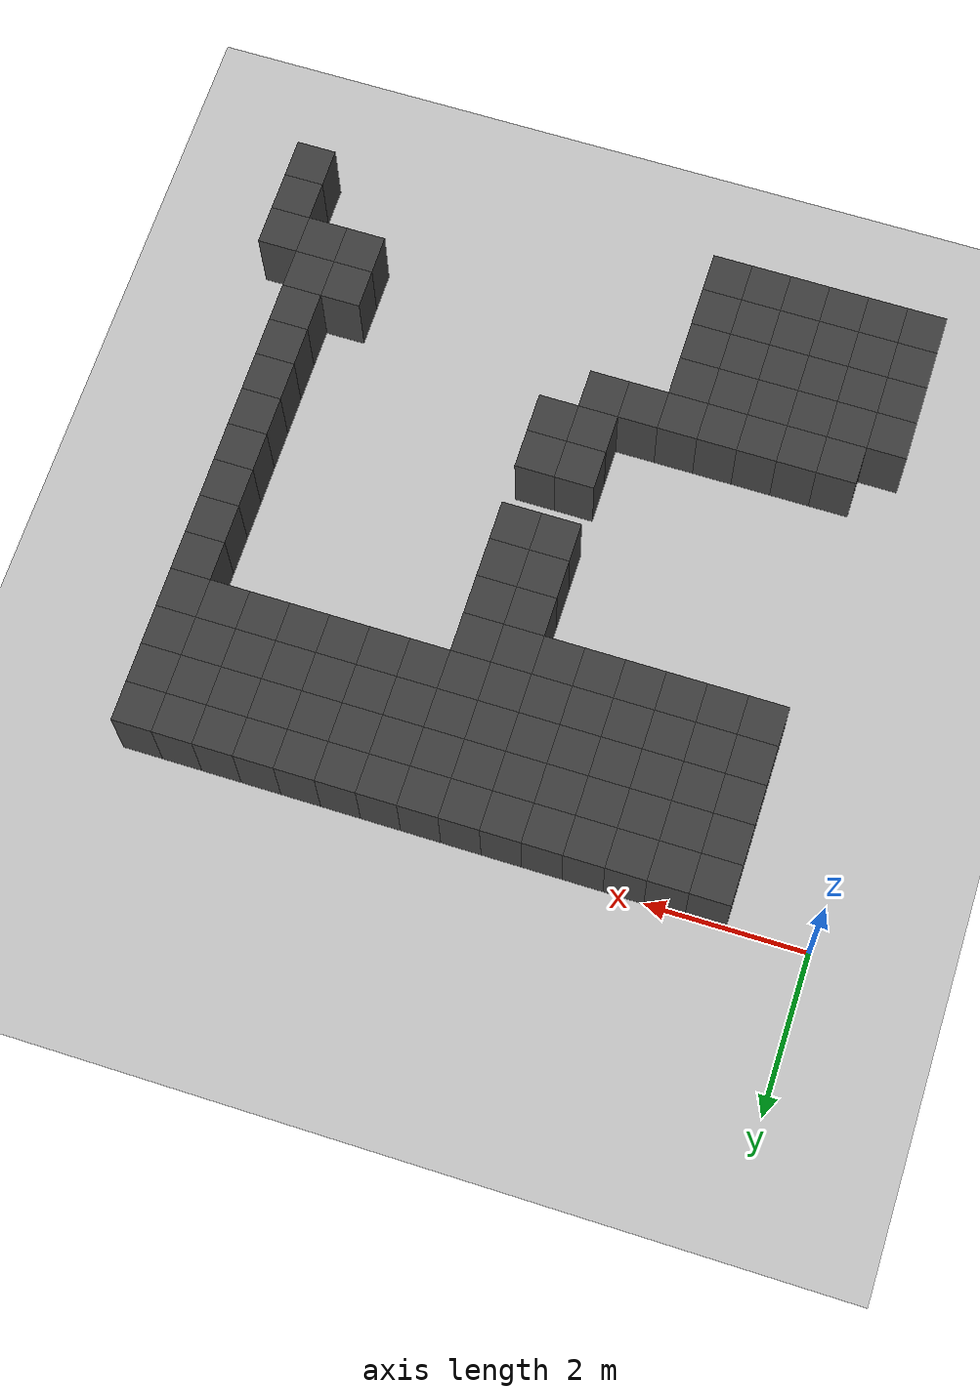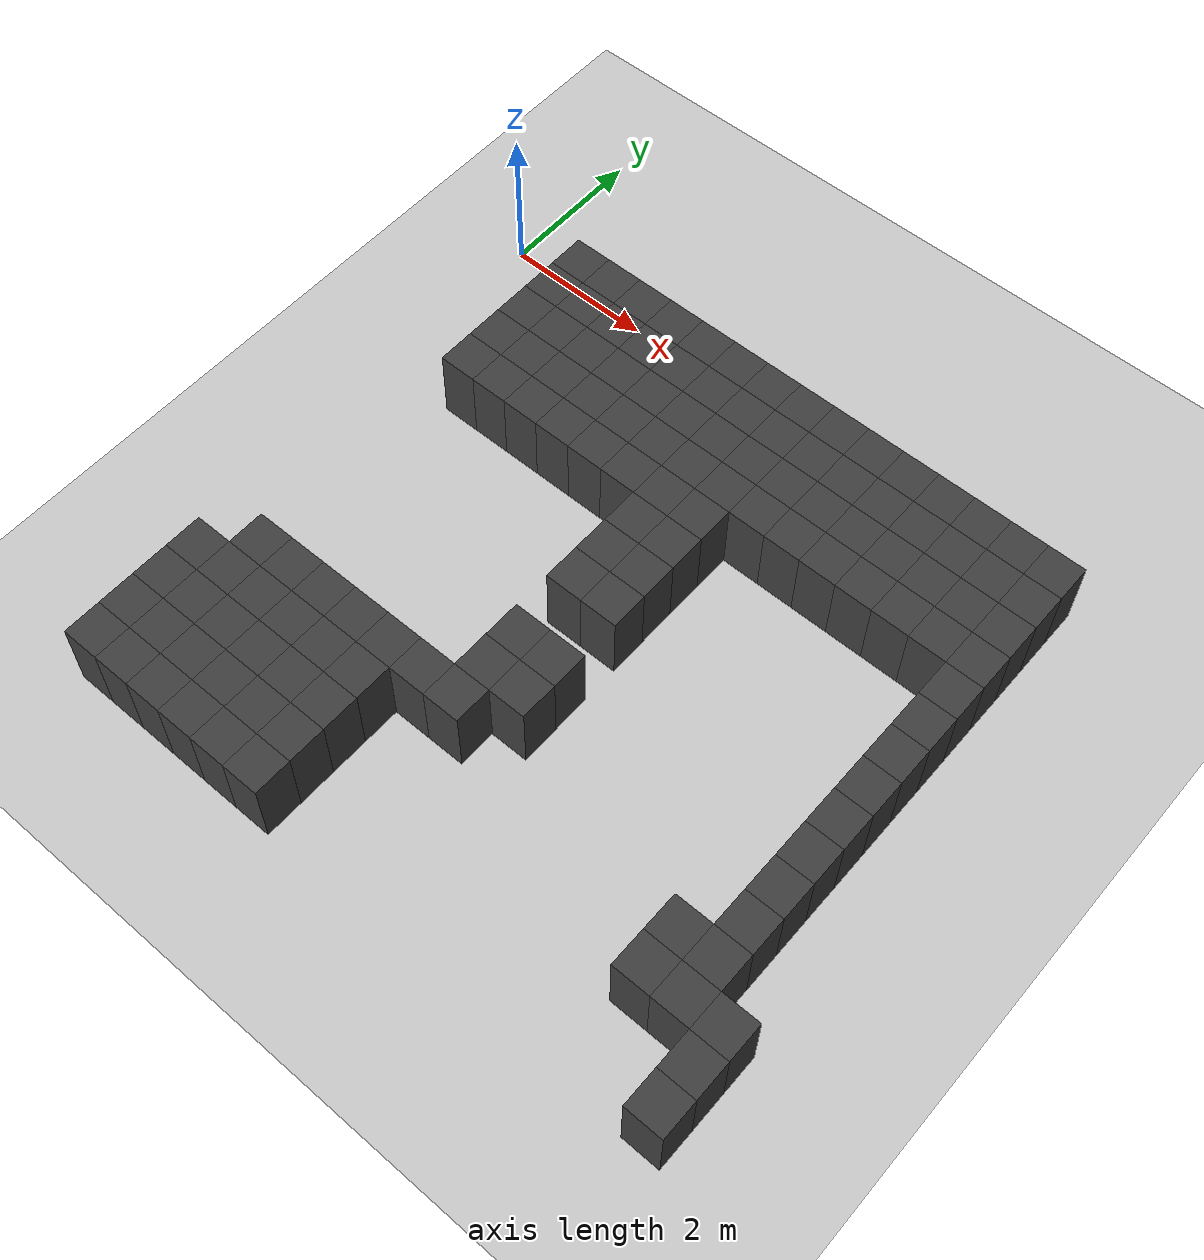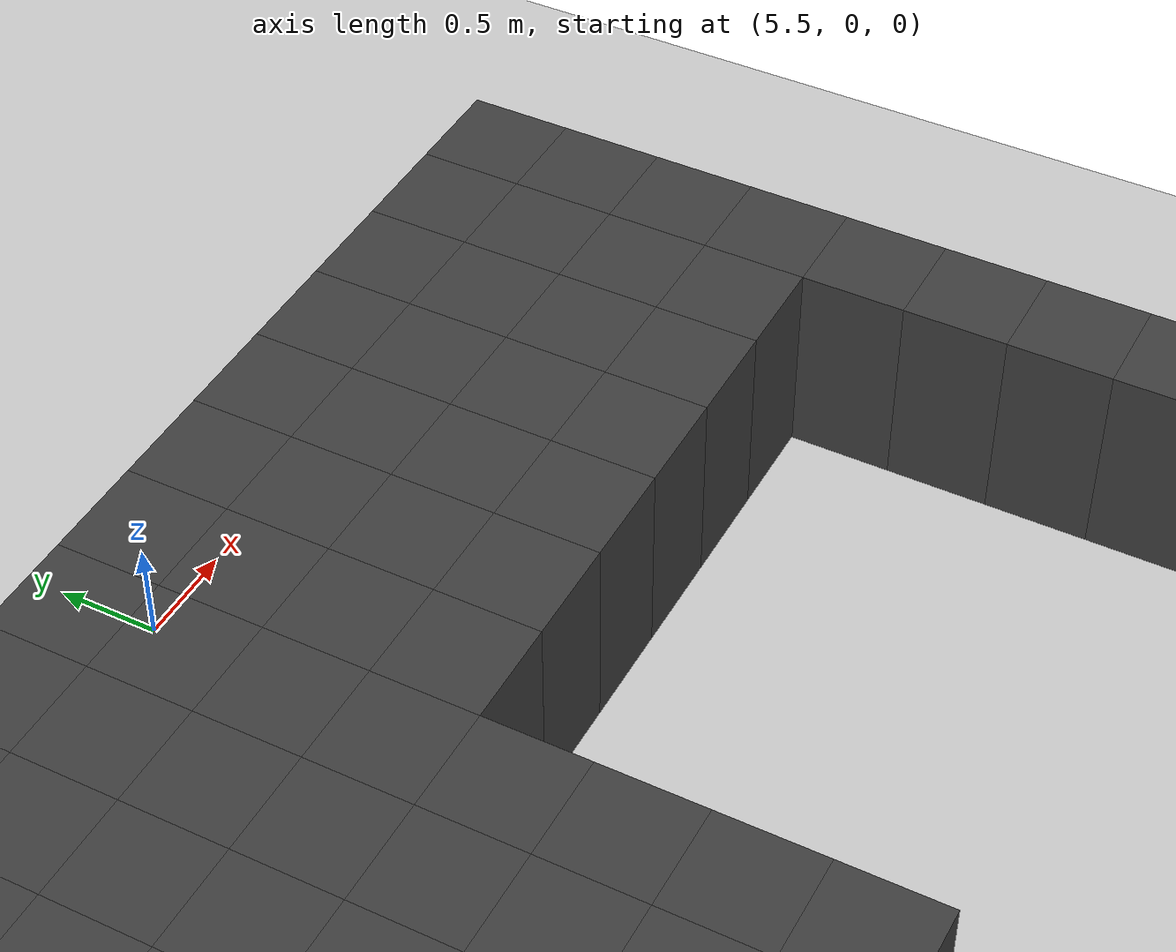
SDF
<sdf version="1.7">
 <world name="map_14668">
  <model name="ground_plane">
   <static>true</static>
   <link name="link">
    <collision name="collision">
     <geometry><plane><normal>0 0 1</normal><size>200 200</size></plane></geometry>
    </collision>
    <visual name="visual">
     <geometry><plane><normal>0 0 1</normal><size>200 200</size></plane></geometry>
     <material><ambient>0.8 0.8 0.8 1</ambient><diffuse>0.8 0.8 0.8 1</diffuse></material>
    </visual>
   </link>
  </model>
  <model name="maze_environment">
   <static>true</static>
   <link name="wall_977">
    <pose>1.250 -0.250 0.500 0 0 0</pose>
    <collision name="col"><geometry><box><size>0.5 0.5 1.0</size></box></geometry></collision>
    <visual name="vis">
     <geometry><box><size>0.5 0.5 1.0</size></box></geometry>
     <material><ambient>0.15 0.15 0.15 1</ambient><diffuse>0.25 0.25 0.25 1</diffuse></material>
    </visual>
   </link>
   <link name="wall_978">
    <pose>1.750 -0.250 0.500 0 0 0</pose>
    <collision name="col"><geometry><box><size>0.5 0.5 1.0</size></box></geometry></collision>
    <visual name="vis">
     <geometry><box><size>0.5 0.5 1.0</size></box></geometry>
     <material><ambient>0.15 0.15 0.15 1</ambient><diffuse>0.25 0.25 0.25 1</diffuse></material>
    </visual>
   </link>
   <link name="wall_979">
    <pose>2.250 -0.250 0.500 0 0 0</pose>
    <collision name="col"><geometry><box><size>0.5 0.5 1.0</size></box></geometry></collision>
    <visual name="vis">
     <geometry><box><size>0.5 0.5 1.0</size></box></geometry>
     <material><ambient>0.15 0.15 0.15 1</ambient><diffuse>0.25 0.25 0.25 1</diffuse></material>
    </visual>
   </link>
   <link name="wall_980">
    <pose>2.750 -0.250 0.500 0 0 0</pose>
    <collision name="col"><geometry><box><size>0.5 0.5 1.0</size></box></geometry></collision>
    <visual name="vis">
     <geometry><box><size>0.5 0.5 1.0</size></box></geometry>
     <material><ambient>0.15 0.15 0.15 1</ambient><diffuse>0.25 0.25 0.25 1</diffuse></material>
    </visual>
   </link>
   <link name="wall_981">
    <pose>3.250 -0.250 0.500 0 0 0</pose>
    <collision name="col"><geometry><box><size>0.5 0.5 1.0</size></box></geometry></collision>
    <visual name="vis">
     <geometry><box><size>0.5 0.5 1.0</size></box></geometry>
     <material><ambient>0.15 0.15 0.15 1</ambient><diffuse>0.25 0.25 0.25 1</diffuse></material>
    </visual>
   </link>
   <link name="wall_982">
    <pose>3.750 -0.250 0.500 0 0 0</pose>
    <collision name="col"><geometry><box><size>0.5 0.5 1.0</size></box></geometry></collision>
    <visual name="vis">
     <geometry><box><size>0.5 0.5 1.0</size></box></geometry>
     <material><ambient>0.15 0.15 0.15 1</ambient><diffuse>0.25 0.25 0.25 1</diffuse></material>
    </visual>
   </link>
   <link name="wall_983">
    <pose>4.250 -0.250 0.500 0 0 0</pose>
    <collision name="col"><geometry><box><size>0.5 0.5 1.0</size></box></geometry></collision>
    <visual name="vis">
     <geometry><box><size>0.5 0.5 1.0</size></box></geometry>
     <material><ambient>0.15 0.15 0.15 1</ambient><diffuse>0.25 0.25 0.25 1</diffuse></material>
    </visual>
   </link>
   <link name="wall_984">
    <pose>4.750 -0.250 0.500 0 0 0</pose>
    <collision name="col"><geometry><box><size>0.5 0.5 1.0</size></box></geometry></collision>
    <visual name="vis">
     <geometry><box><size>0.5 0.5 1.0</size></box></geometry>
     <material><ambient>0.15 0.15 0.15 1</ambient><diffuse>0.25 0.25 0.25 1</diffuse></material>
    </visual>
   </link>
   <link name="wall_985">
    <pose>5.250 -0.250 0.500 0 0 0</pose>
    <collision name="col"><geometry><box><size>0.5 0.5 1.0</size></box></geometry></collision>
    <visual name="vis">
     <geometry><box><size>0.5 0.5 1.0</size></box></geometry>
     <material><ambient>0.15 0.15 0.15 1</ambient><diffuse>0.25 0.25 0.25 1</diffuse></material>
    </visual>
   </link>
   <link name="wall_986">
    <pose>5.750 -0.250 0.500 0 0 0</pose>
    <collision name="col"><geometry><box><size>0.5 0.5 1.0</size></box></geometry></collision>
    <visual name="vis">
     <geometry><box><size>0.5 0.5 1.0</size></box></geometry>
     <material><ambient>0.15 0.15 0.15 1</ambient><diffuse>0.25 0.25 0.25 1</diffuse></material>
    </visual>
   </link>
   <link name="wall_987">
    <pose>6.250 -0.250 0.500 0 0 0</pose>
    <collision name="col"><geometry><box><size>0.5 0.5 1.0</size></box></geometry></collision>
    <visual name="vis">
     <geometry><box><size>0.5 0.5 1.0</size></box></geometry>
     <material><ambient>0.15 0.15 0.15 1</ambient><diffuse>0.25 0.25 0.25 1</diffuse></material>
    </visual>
   </link>
   <link name="wall_988">
    <pose>6.750 -0.250 0.500 0 0 0</pose>
    <collision name="col"><geometry><box><size>0.5 0.5 1.0</size></box></geometry></collision>
    <visual name="vis">
     <geometry><box><size>0.5 0.5 1.0</size></box></geometry>
     <material><ambient>0.15 0.15 0.15 1</ambient><diffuse>0.25 0.25 0.25 1</diffuse></material>
    </visual>
   </link>
   <link name="wall_989">
    <pose>7.250 -0.250 0.500 0 0 0</pose>
    <collision name="col"><geometry><box><size>0.5 0.5 1.0</size></box></geometry></collision>
    <visual name="vis">
     <geometry><box><size>0.5 0.5 1.0</size></box></geometry>
     <material><ambient>0.15 0.15 0.15 1</ambient><diffuse>0.25 0.25 0.25 1</diffuse></material>
    </visual>
   </link>
   <link name="wall_990">
    <pose>7.750 -0.250 0.500 0 0 0</pose>
    <collision name="col"><geometry><box><size>0.5 0.5 1.0</size></box></geometry></collision>
    <visual name="vis">
     <geometry><box><size>0.5 0.5 1.0</size></box></geometry>
     <material><ambient>0.15 0.15 0.15 1</ambient><diffuse>0.25 0.25 0.25 1</diffuse></material>
    </visual>
   </link>
   <link name="wall_991">
    <pose>8.250 -0.250 0.500 0 0 0</pose>
    <collision name="col"><geometry><box><size>0.5 0.5 1.0</size></box></geometry></collision>
    <visual name="vis">
     <geometry><box><size>0.5 0.5 1.0</size></box></geometry>
     <material><ambient>0.15 0.15 0.15 1</ambient><diffuse>0.25 0.25 0.25 1</diffuse></material>
    </visual>
   </link>
   <link name="wall_1026">
    <pose>1.250 -0.750 0.500 0 0 0</pose>
    <collision name="col"><geometry><box><size>0.5 0.5 1.0</size></box></geometry></collision>
    <visual name="vis">
     <geometry><box><size>0.5 0.5 1.0</size></box></geometry>
     <material><ambient>0.15 0.15 0.15 1</ambient><diffuse>0.25 0.25 0.25 1</diffuse></material>
    </visual>
   </link>
   <link name="wall_1027">
    <pose>1.750 -0.750 0.500 0 0 0</pose>
    <collision name="col"><geometry><box><size>0.5 0.5 1.0</size></box></geometry></collision>
    <visual name="vis">
     <geometry><box><size>0.5 0.5 1.0</size></box></geometry>
     <material><ambient>0.15 0.15 0.15 1</ambient><diffuse>0.25 0.25 0.25 1</diffuse></material>
    </visual>
   </link>
   <link name="wall_1028">
    <pose>2.250 -0.750 0.500 0 0 0</pose>
    <collision name="col"><geometry><box><size>0.5 0.5 1.0</size></box></geometry></collision>
    <visual name="vis">
     <geometry><box><size>0.5 0.5 1.0</size></box></geometry>
     <material><ambient>0.15 0.15 0.15 1</ambient><diffuse>0.25 0.25 0.25 1</diffuse></material>
    </visual>
   </link>
   <link name="wall_1029">
    <pose>2.750 -0.750 0.500 0 0 0</pose>
    <collision name="col"><geometry><box><size>0.5 0.5 1.0</size></box></geometry></collision>
    <visual name="vis">
     <geometry><box><size>0.5 0.5 1.0</size></box></geometry>
     <material><ambient>0.15 0.15 0.15 1</ambient><diffuse>0.25 0.25 0.25 1</diffuse></material>
    </visual>
   </link>
   <link name="wall_1030">
    <pose>3.250 -0.750 0.500 0 0 0</pose>
    <collision name="col"><geometry><box><size>0.5 0.5 1.0</size></box></geometry></collision>
    <visual name="vis">
     <geometry><box><size>0.5 0.5 1.0</size></box></geometry>
     <material><ambient>0.15 0.15 0.15 1</ambient><diffuse>0.25 0.25 0.25 1</diffuse></material>
    </visual>
   </link>
   <link name="wall_1031">
    <pose>3.750 -0.750 0.500 0 0 0</pose>
    <collision name="col"><geometry><box><size>0.5 0.5 1.0</size></box></geometry></collision>
    <visual name="vis">
     <geometry><box><size>0.5 0.5 1.0</size></box></geometry>
     <material><ambient>0.15 0.15 0.15 1</ambient><diffuse>0.25 0.25 0.25 1</diffuse></material>
    </visual>
   </link>
   <link name="wall_1032">
    <pose>4.250 -0.750 0.500 0 0 0</pose>
    <collision name="col"><geometry><box><size>0.5 0.5 1.0</size></box></geometry></collision>
    <visual name="vis">
     <geometry><box><size>0.5 0.5 1.0</size></box></geometry>
     <material><ambient>0.15 0.15 0.15 1</ambient><diffuse>0.25 0.25 0.25 1</diffuse></material>
    </visual>
   </link>
   <link name="wall_1033">
    <pose>4.750 -0.750 0.500 0 0 0</pose>
    <collision name="col"><geometry><box><size>0.5 0.5 1.0</size></box></geometry></collision>
    <visual name="vis">
     <geometry><box><size>0.5 0.5 1.0</size></box></geometry>
     <material><ambient>0.15 0.15 0.15 1</ambient><diffuse>0.25 0.25 0.25 1</diffuse></material>
    </visual>
   </link>
   <link name="wall_1034">
    <pose>5.250 -0.750 0.500 0 0 0</pose>
    <collision name="col"><geometry><box><size>0.5 0.5 1.0</size></box></geometry></collision>
    <visual name="vis">
     <geometry><box><size>0.5 0.5 1.0</size></box></geometry>
     <material><ambient>0.15 0.15 0.15 1</ambient><diffuse>0.25 0.25 0.25 1</diffuse></material>
    </visual>
   </link>
   <link name="wall_1035">
    <pose>5.750 -0.750 0.500 0 0 0</pose>
    <collision name="col"><geometry><box><size>0.5 0.5 1.0</size></box></geometry></collision>
    <visual name="vis">
     <geometry><box><size>0.5 0.5 1.0</size></box></geometry>
     <material><ambient>0.15 0.15 0.15 1</ambient><diffuse>0.25 0.25 0.25 1</diffuse></material>
    </visual>
   </link>
   <link name="wall_1036">
    <pose>6.250 -0.750 0.500 0 0 0</pose>
    <collision name="col"><geometry><box><size>0.5 0.5 1.0</size></box></geometry></collision>
    <visual name="vis">
     <geometry><box><size>0.5 0.5 1.0</size></box></geometry>
     <material><ambient>0.15 0.15 0.15 1</ambient><diffuse>0.25 0.25 0.25 1</diffuse></material>
    </visual>
   </link>
   <link name="wall_1037">
    <pose>6.750 -0.750 0.500 0 0 0</pose>
    <collision name="col"><geometry><box><size>0.5 0.5 1.0</size></box></geometry></collision>
    <visual name="vis">
     <geometry><box><size>0.5 0.5 1.0</size></box></geometry>
     <material><ambient>0.15 0.15 0.15 1</ambient><diffuse>0.25 0.25 0.25 1</diffuse></material>
    </visual>
   </link>
   <link name="wall_1038">
    <pose>7.250 -0.750 0.500 0 0 0</pose>
    <collision name="col"><geometry><box><size>0.5 0.5 1.0</size></box></geometry></collision>
    <visual name="vis">
     <geometry><box><size>0.5 0.5 1.0</size></box></geometry>
     <material><ambient>0.15 0.15 0.15 1</ambient><diffuse>0.25 0.25 0.25 1</diffuse></material>
    </visual>
   </link>
   <link name="wall_1039">
    <pose>7.750 -0.750 0.500 0 0 0</pose>
    <collision name="col"><geometry><box><size>0.5 0.5 1.0</size></box></geometry></collision>
    <visual name="vis">
     <geometry><box><size>0.5 0.5 1.0</size></box></geometry>
     <material><ambient>0.15 0.15 0.15 1</ambient><diffuse>0.25 0.25 0.25 1</diffuse></material>
    </visual>
   </link>
   <link name="wall_1040">
    <pose>8.250 -0.750 0.500 0 0 0</pose>
    <collision name="col"><geometry><box><size>0.5 0.5 1.0</size></box></geometry></collision>
    <visual name="vis">
     <geometry><box><size>0.5 0.5 1.0</size></box></geometry>
     <material><ambient>0.15 0.15 0.15 1</ambient><diffuse>0.25 0.25 0.25 1</diffuse></material>
    </visual>
   </link>
   <link name="wall_1068">
    <pose>1.250 -1.250 0.500 0 0 0</pose>
    <collision name="col"><geometry><box><size>0.5 0.5 1.0</size></box></geometry></collision>
    <visual name="vis">
     <geometry><box><size>0.5 0.5 1.0</size></box></geometry>
     <material><ambient>0.15 0.15 0.15 1</ambient><diffuse>0.25 0.25 0.25 1</diffuse></material>
    </visual>
   </link>
   <link name="wall_1069">
    <pose>1.750 -1.250 0.500 0 0 0</pose>
    <collision name="col"><geometry><box><size>0.5 0.5 1.0</size></box></geometry></collision>
    <visual name="vis">
     <geometry><box><size>0.5 0.5 1.0</size></box></geometry>
     <material><ambient>0.15 0.15 0.15 1</ambient><diffuse>0.25 0.25 0.25 1</diffuse></material>
    </visual>
   </link>
   <link name="wall_1070">
    <pose>2.250 -1.250 0.500 0 0 0</pose>
    <collision name="col"><geometry><box><size>0.5 0.5 1.0</size></box></geometry></collision>
    <visual name="vis">
     <geometry><box><size>0.5 0.5 1.0</size></box></geometry>
     <material><ambient>0.15 0.15 0.15 1</ambient><diffuse>0.25 0.25 0.25 1</diffuse></material>
    </visual>
   </link>
   <link name="wall_1071">
    <pose>2.750 -1.250 0.500 0 0 0</pose>
    <collision name="col"><geometry><box><size>0.5 0.5 1.0</size></box></geometry></collision>
    <visual name="vis">
     <geometry><box><size>0.5 0.5 1.0</size></box></geometry>
     <material><ambient>0.15 0.15 0.15 1</ambient><diffuse>0.25 0.25 0.25 1</diffuse></material>
    </visual>
   </link>
   <link name="wall_1072">
    <pose>3.250 -1.250 0.500 0 0 0</pose>
    <collision name="col"><geometry><box><size>0.5 0.5 1.0</size></box></geometry></collision>
    <visual name="vis">
     <geometry><box><size>0.5 0.5 1.0</size></box></geometry>
     <material><ambient>0.15 0.15 0.15 1</ambient><diffuse>0.25 0.25 0.25 1</diffuse></material>
    </visual>
   </link>
   <link name="wall_1073">
    <pose>3.750 -1.250 0.500 0 0 0</pose>
    <collision name="col"><geometry><box><size>0.5 0.5 1.0</size></box></geometry></collision>
    <visual name="vis">
     <geometry><box><size>0.5 0.5 1.0</size></box></geometry>
     <material><ambient>0.15 0.15 0.15 1</ambient><diffuse>0.25 0.25 0.25 1</diffuse></material>
    </visual>
   </link>
   <link name="wall_1074">
    <pose>4.250 -1.250 0.500 0 0 0</pose>
    <collision name="col"><geometry><box><size>0.5 0.5 1.0</size></box></geometry></collision>
    <visual name="vis">
     <geometry><box><size>0.5 0.5 1.0</size></box></geometry>
     <material><ambient>0.15 0.15 0.15 1</ambient><diffuse>0.25 0.25 0.25 1</diffuse></material>
    </visual>
   </link>
   <link name="wall_1075">
    <pose>4.750 -1.250 0.500 0 0 0</pose>
    <collision name="col"><geometry><box><size>0.5 0.5 1.0</size></box></geometry></collision>
    <visual name="vis">
     <geometry><box><size>0.5 0.5 1.0</size></box></geometry>
     <material><ambient>0.15 0.15 0.15 1</ambient><diffuse>0.25 0.25 0.25 1</diffuse></material>
    </visual>
   </link>
   <link name="wall_1076">
    <pose>5.250 -1.250 0.500 0 0 0</pose>
    <collision name="col"><geometry><box><size>0.5 0.5 1.0</size></box></geometry></collision>
    <visual name="vis">
     <geometry><box><size>0.5 0.5 1.0</size></box></geometry>
     <material><ambient>0.15 0.15 0.15 1</ambient><diffuse>0.25 0.25 0.25 1</diffuse></material>
    </visual>
   </link>
   <link name="wall_1077">
    <pose>5.750 -1.250 0.500 0 0 0</pose>
    <collision name="col"><geometry><box><size>0.5 0.5 1.0</size></box></geometry></collision>
    <visual name="vis">
     <geometry><box><size>0.5 0.5 1.0</size></box></geometry>
     <material><ambient>0.15 0.15 0.15 1</ambient><diffuse>0.25 0.25 0.25 1</diffuse></material>
    </visual>
   </link>
   <link name="wall_1078">
    <pose>6.250 -1.250 0.500 0 0 0</pose>
    <collision name="col"><geometry><box><size>0.5 0.5 1.0</size></box></geometry></collision>
    <visual name="vis">
     <geometry><box><size>0.5 0.5 1.0</size></box></geometry>
     <material><ambient>0.15 0.15 0.15 1</ambient><diffuse>0.25 0.25 0.25 1</diffuse></material>
    </visual>
   </link>
   <link name="wall_1079">
    <pose>6.750 -1.250 0.500 0 0 0</pose>
    <collision name="col"><geometry><box><size>0.5 0.5 1.0</size></box></geometry></collision>
    <visual name="vis">
     <geometry><box><size>0.5 0.5 1.0</size></box></geometry>
     <material><ambient>0.15 0.15 0.15 1</ambient><diffuse>0.25 0.25 0.25 1</diffuse></material>
    </visual>
   </link>
   <link name="wall_1080">
    <pose>7.250 -1.250 0.500 0 0 0</pose>
    <collision name="col"><geometry><box><size>0.5 0.5 1.0</size></box></geometry></collision>
    <visual name="vis">
     <geometry><box><size>0.5 0.5 1.0</size></box></geometry>
     <material><ambient>0.15 0.15 0.15 1</ambient><diffuse>0.25 0.25 0.25 1</diffuse></material>
    </visual>
   </link>
   <link name="wall_1081">
    <pose>7.750 -1.250 0.500 0 0 0</pose>
    <collision name="col"><geometry><box><size>0.5 0.5 1.0</size></box></geometry></collision>
    <visual name="vis">
     <geometry><box><size>0.5 0.5 1.0</size></box></geometry>
     <material><ambient>0.15 0.15 0.15 1</ambient><diffuse>0.25 0.25 0.25 1</diffuse></material>
    </visual>
   </link>
   <link name="wall_1082">
    <pose>8.250 -1.250 0.500 0 0 0</pose>
    <collision name="col"><geometry><box><size>0.5 0.5 1.0</size></box></geometry></collision>
    <visual name="vis">
     <geometry><box><size>0.5 0.5 1.0</size></box></geometry>
     <material><ambient>0.15 0.15 0.15 1</ambient><diffuse>0.25 0.25 0.25 1</diffuse></material>
    </visual>
   </link>
   <link name="wall_1104">
    <pose>1.250 -1.750 0.500 0 0 0</pose>
    <collision name="col"><geometry><box><size>0.5 0.5 1.0</size></box></geometry></collision>
    <visual name="vis">
     <geometry><box><size>0.5 0.5 1.0</size></box></geometry>
     <material><ambient>0.15 0.15 0.15 1</ambient><diffuse>0.25 0.25 0.25 1</diffuse></material>
    </visual>
   </link>
   <link name="wall_1105">
    <pose>1.750 -1.750 0.500 0 0 0</pose>
    <collision name="col"><geometry><box><size>0.5 0.5 1.0</size></box></geometry></collision>
    <visual name="vis">
     <geometry><box><size>0.5 0.5 1.0</size></box></geometry>
     <material><ambient>0.15 0.15 0.15 1</ambient><diffuse>0.25 0.25 0.25 1</diffuse></material>
    </visual>
   </link>
   <link name="wall_1106">
    <pose>2.250 -1.750 0.500 0 0 0</pose>
    <collision name="col"><geometry><box><size>0.5 0.5 1.0</size></box></geometry></collision>
    <visual name="vis">
     <geometry><box><size>0.5 0.5 1.0</size></box></geometry>
     <material><ambient>0.15 0.15 0.15 1</ambient><diffuse>0.25 0.25 0.25 1</diffuse></material>
    </visual>
   </link>
   <link name="wall_1107">
    <pose>2.750 -1.750 0.500 0 0 0</pose>
    <collision name="col"><geometry><box><size>0.5 0.5 1.0</size></box></geometry></collision>
    <visual name="vis">
     <geometry><box><size>0.5 0.5 1.0</size></box></geometry>
     <material><ambient>0.15 0.15 0.15 1</ambient><diffuse>0.25 0.25 0.25 1</diffuse></material>
    </visual>
   </link>
   <link name="wall_1108">
    <pose>3.250 -1.750 0.500 0 0 0</pose>
    <collision name="col"><geometry><box><size>0.5 0.5 1.0</size></box></geometry></collision>
    <visual name="vis">
     <geometry><box><size>0.5 0.5 1.0</size></box></geometry>
     <material><ambient>0.15 0.15 0.15 1</ambient><diffuse>0.25 0.25 0.25 1</diffuse></material>
    </visual>
   </link>
   <link name="wall_1109">
    <pose>3.750 -1.750 0.500 0 0 0</pose>
    <collision name="col"><geometry><box><size>0.5 0.5 1.0</size></box></geometry></collision>
    <visual name="vis">
     <geometry><box><size>0.5 0.5 1.0</size></box></geometry>
     <material><ambient>0.15 0.15 0.15 1</ambient><diffuse>0.25 0.25 0.25 1</diffuse></material>
    </visual>
   </link>
   <link name="wall_1110">
    <pose>4.250 -1.750 0.500 0 0 0</pose>
    <collision name="col"><geometry><box><size>0.5 0.5 1.0</size></box></geometry></collision>
    <visual name="vis">
     <geometry><box><size>0.5 0.5 1.0</size></box></geometry>
     <material><ambient>0.15 0.15 0.15 1</ambient><diffuse>0.25 0.25 0.25 1</diffuse></material>
    </visual>
   </link>
   <link name="wall_1111">
    <pose>4.750 -1.750 0.500 0 0 0</pose>
    <collision name="col"><geometry><box><size>0.5 0.5 1.0</size></box></geometry></collision>
    <visual name="vis">
     <geometry><box><size>0.5 0.5 1.0</size></box></geometry>
     <material><ambient>0.15 0.15 0.15 1</ambient><diffuse>0.25 0.25 0.25 1</diffuse></material>
    </visual>
   </link>
   <link name="wall_1112">
    <pose>5.250 -1.750 0.500 0 0 0</pose>
    <collision name="col"><geometry><box><size>0.5 0.5 1.0</size></box></geometry></collision>
    <visual name="vis">
     <geometry><box><size>0.5 0.5 1.0</size></box></geometry>
     <material><ambient>0.15 0.15 0.15 1</ambient><diffuse>0.25 0.25 0.25 1</diffuse></material>
    </visual>
   </link>
   <link name="wall_1113">
    <pose>5.750 -1.750 0.500 0 0 0</pose>
    <collision name="col"><geometry><box><size>0.5 0.5 1.0</size></box></geometry></collision>
    <visual name="vis">
     <geometry><box><size>0.5 0.5 1.0</size></box></geometry>
     <material><ambient>0.15 0.15 0.15 1</ambient><diffuse>0.25 0.25 0.25 1</diffuse></material>
    </visual>
   </link>
   <link name="wall_1114">
    <pose>6.250 -1.750 0.500 0 0 0</pose>
    <collision name="col"><geometry><box><size>0.5 0.5 1.0</size></box></geometry></collision>
    <visual name="vis">
     <geometry><box><size>0.5 0.5 1.0</size></box></geometry>
     <material><ambient>0.15 0.15 0.15 1</ambient><diffuse>0.25 0.25 0.25 1</diffuse></material>
    </visual>
   </link>
   <link name="wall_1115">
    <pose>6.750 -1.750 0.500 0 0 0</pose>
    <collision name="col"><geometry><box><size>0.5 0.5 1.0</size></box></geometry></collision>
    <visual name="vis">
     <geometry><box><size>0.5 0.5 1.0</size></box></geometry>
     <material><ambient>0.15 0.15 0.15 1</ambient><diffuse>0.25 0.25 0.25 1</diffuse></material>
    </visual>
   </link>
   <link name="wall_1116">
    <pose>7.250 -1.750 0.500 0 0 0</pose>
    <collision name="col"><geometry><box><size>0.5 0.5 1.0</size></box></geometry></collision>
    <visual name="vis">
     <geometry><box><size>0.5 0.5 1.0</size></box></geometry>
     <material><ambient>0.15 0.15 0.15 1</ambient><diffuse>0.25 0.25 0.25 1</diffuse></material>
    </visual>
   </link>
   <link name="wall_1117">
    <pose>7.750 -1.750 0.500 0 0 0</pose>
    <collision name="col"><geometry><box><size>0.5 0.5 1.0</size></box></geometry></collision>
    <visual name="vis">
     <geometry><box><size>0.5 0.5 1.0</size></box></geometry>
     <material><ambient>0.15 0.15 0.15 1</ambient><diffuse>0.25 0.25 0.25 1</diffuse></material>
    </visual>
   </link>
   <link name="wall_1118">
    <pose>8.250 -1.750 0.500 0 0 0</pose>
    <collision name="col"><geometry><box><size>0.5 0.5 1.0</size></box></geometry></collision>
    <visual name="vis">
     <geometry><box><size>0.5 0.5 1.0</size></box></geometry>
     <material><ambient>0.15 0.15 0.15 1</ambient><diffuse>0.25 0.25 0.25 1</diffuse></material>
    </visual>
   </link>
   <link name="wall_1140">
    <pose>1.250 -2.250 0.500 0 0 0</pose>
    <collision name="col"><geometry><box><size>0.5 0.5 1.0</size></box></geometry></collision>
    <visual name="vis">
     <geometry><box><size>0.5 0.5 1.0</size></box></geometry>
     <material><ambient>0.15 0.15 0.15 1</ambient><diffuse>0.25 0.25 0.25 1</diffuse></material>
    </visual>
   </link>
   <link name="wall_1141">
    <pose>1.750 -2.250 0.500 0 0 0</pose>
    <collision name="col"><geometry><box><size>0.5 0.5 1.0</size></box></geometry></collision>
    <visual name="vis">
     <geometry><box><size>0.5 0.5 1.0</size></box></geometry>
     <material><ambient>0.15 0.15 0.15 1</ambient><diffuse>0.25 0.25 0.25 1</diffuse></material>
    </visual>
   </link>
   <link name="wall_1142">
    <pose>2.250 -2.250 0.500 0 0 0</pose>
    <collision name="col"><geometry><box><size>0.5 0.5 1.0</size></box></geometry></collision>
    <visual name="vis">
     <geometry><box><size>0.5 0.5 1.0</size></box></geometry>
     <material><ambient>0.15 0.15 0.15 1</ambient><diffuse>0.25 0.25 0.25 1</diffuse></material>
    </visual>
   </link>
   <link name="wall_1143">
    <pose>2.750 -2.250 0.500 0 0 0</pose>
    <collision name="col"><geometry><box><size>0.5 0.5 1.0</size></box></geometry></collision>
    <visual name="vis">
     <geometry><box><size>0.5 0.5 1.0</size></box></geometry>
     <material><ambient>0.15 0.15 0.15 1</ambient><diffuse>0.25 0.25 0.25 1</diffuse></material>
    </visual>
   </link>
   <link name="wall_1144">
    <pose>3.250 -2.250 0.500 0 0 0</pose>
    <collision name="col"><geometry><box><size>0.5 0.5 1.0</size></box></geometry></collision>
    <visual name="vis">
     <geometry><box><size>0.5 0.5 1.0</size></box></geometry>
     <material><ambient>0.15 0.15 0.15 1</ambient><diffuse>0.25 0.25 0.25 1</diffuse></material>
    </visual>
   </link>
   <link name="wall_1145">
    <pose>3.750 -2.250 0.500 0 0 0</pose>
    <collision name="col"><geometry><box><size>0.5 0.5 1.0</size></box></geometry></collision>
    <visual name="vis">
     <geometry><box><size>0.5 0.5 1.0</size></box></geometry>
     <material><ambient>0.15 0.15 0.15 1</ambient><diffuse>0.25 0.25 0.25 1</diffuse></material>
    </visual>
   </link>
   <link name="wall_1146">
    <pose>4.250 -2.250 0.500 0 0 0</pose>
    <collision name="col"><geometry><box><size>0.5 0.5 1.0</size></box></geometry></collision>
    <visual name="vis">
     <geometry><box><size>0.5 0.5 1.0</size></box></geometry>
     <material><ambient>0.15 0.15 0.15 1</ambient><diffuse>0.25 0.25 0.25 1</diffuse></material>
    </visual>
   </link>
   <link name="wall_1147">
    <pose>4.750 -2.250 0.500 0 0 0</pose>
    <collision name="col"><geometry><box><size>0.5 0.5 1.0</size></box></geometry></collision>
    <visual name="vis">
     <geometry><box><size>0.5 0.5 1.0</size></box></geometry>
     <material><ambient>0.15 0.15 0.15 1</ambient><diffuse>0.25 0.25 0.25 1</diffuse></material>
    </visual>
   </link>
   <link name="wall_1148">
    <pose>8.250 -2.250 0.500 0 0 0</pose>
    <collision name="col"><geometry><box><size>0.5 0.5 1.0</size></box></geometry></collision>
    <visual name="vis">
     <geometry><box><size>0.5 0.5 1.0</size></box></geometry>
     <material><ambient>0.15 0.15 0.15 1</ambient><diffuse>0.25 0.25 0.25 1</diffuse></material>
    </visual>
   </link>
   <link name="wall_1169">
    <pose>4.250 -2.750 0.500 0 0 0</pose>
    <collision name="col"><geometry><box><size>0.5 0.5 1.0</size></box></geometry></collision>
    <visual name="vis">
     <geometry><box><size>0.5 0.5 1.0</size></box></geometry>
     <material><ambient>0.15 0.15 0.15 1</ambient><diffuse>0.25 0.25 0.25 1</diffuse></material>
    </visual>
   </link>
   <link name="wall_1170">
    <pose>4.750 -2.750 0.500 0 0 0</pose>
    <collision name="col"><geometry><box><size>0.5 0.5 1.0</size></box></geometry></collision>
    <visual name="vis">
     <geometry><box><size>0.5 0.5 1.0</size></box></geometry>
     <material><ambient>0.15 0.15 0.15 1</ambient><diffuse>0.25 0.25 0.25 1</diffuse></material>
    </visual>
   </link>
   <link name="wall_1171">
    <pose>8.250 -2.750 0.500 0 0 0</pose>
    <collision name="col"><geometry><box><size>0.5 0.5 1.0</size></box></geometry></collision>
    <visual name="vis">
     <geometry><box><size>0.5 0.5 1.0</size></box></geometry>
     <material><ambient>0.15 0.15 0.15 1</ambient><diffuse>0.25 0.25 0.25 1</diffuse></material>
    </visual>
   </link>
   <link name="wall_1190">
    <pose>4.250 -3.250 0.500 0 0 0</pose>
    <collision name="col"><geometry><box><size>0.5 0.5 1.0</size></box></geometry></collision>
    <visual name="vis">
     <geometry><box><size>0.5 0.5 1.0</size></box></geometry>
     <material><ambient>0.15 0.15 0.15 1</ambient><diffuse>0.25 0.25 0.25 1</diffuse></material>
    </visual>
   </link>
   <link name="wall_1191">
    <pose>4.750 -3.250 0.500 0 0 0</pose>
    <collision name="col"><geometry><box><size>0.5 0.5 1.0</size></box></geometry></collision>
    <visual name="vis">
     <geometry><box><size>0.5 0.5 1.0</size></box></geometry>
     <material><ambient>0.15 0.15 0.15 1</ambient><diffuse>0.25 0.25 0.25 1</diffuse></material>
    </visual>
   </link>
   <link name="wall_1192">
    <pose>8.250 -3.250 0.500 0 0 0</pose>
    <collision name="col"><geometry><box><size>0.5 0.5 1.0</size></box></geometry></collision>
    <visual name="vis">
     <geometry><box><size>0.5 0.5 1.0</size></box></geometry>
     <material><ambient>0.15 0.15 0.15 1</ambient><diffuse>0.25 0.25 0.25 1</diffuse></material>
    </visual>
   </link>
   <link name="wall_1211">
    <pose>4.250 -3.750 0.500 0 0 0</pose>
    <collision name="col"><geometry><box><size>0.5 0.5 1.0</size></box></geometry></collision>
    <visual name="vis">
     <geometry><box><size>0.5 0.5 1.0</size></box></geometry>
     <material><ambient>0.15 0.15 0.15 1</ambient><diffuse>0.25 0.25 0.25 1</diffuse></material>
    </visual>
   </link>
   <link name="wall_1212">
    <pose>4.750 -3.750 0.500 0 0 0</pose>
    <collision name="col"><geometry><box><size>0.5 0.5 1.0</size></box></geometry></collision>
    <visual name="vis">
     <geometry><box><size>0.5 0.5 1.0</size></box></geometry>
     <material><ambient>0.15 0.15 0.15 1</ambient><diffuse>0.25 0.25 0.25 1</diffuse></material>
    </visual>
   </link>
   <link name="wall_1213">
    <pose>8.250 -3.750 0.500 0 0 0</pose>
    <collision name="col"><geometry><box><size>0.5 0.5 1.0</size></box></geometry></collision>
    <visual name="vis">
     <geometry><box><size>0.5 0.5 1.0</size></box></geometry>
     <material><ambient>0.15 0.15 0.15 1</ambient><diffuse>0.25 0.25 0.25 1</diffuse></material>
    </visual>
   </link>
   <link name="wall_1232">
    <pose>8.250 -4.250 0.500 0 0 0</pose>
    <collision name="col"><geometry><box><size>0.5 0.5 1.0</size></box></geometry></collision>
    <visual name="vis">
     <geometry><box><size>0.5 0.5 1.0</size></box></geometry>
     <material><ambient>0.15 0.15 0.15 1</ambient><diffuse>0.25 0.25 0.25 1</diffuse></material>
    </visual>
   </link>
   <link name="wall_1247">
    <pose>4.250 -4.750 0.500 0 0 0</pose>
    <collision name="col"><geometry><box><size>0.5 0.5 1.0</size></box></geometry></collision>
    <visual name="vis">
     <geometry><box><size>0.5 0.5 1.0</size></box></geometry>
     <material><ambient>0.15 0.15 0.15 1</ambient><diffuse>0.25 0.25 0.25 1</diffuse></material>
    </visual>
   </link>
   <link name="wall_1248">
    <pose>4.750 -4.750 0.500 0 0 0</pose>
    <collision name="col"><geometry><box><size>0.5 0.5 1.0</size></box></geometry></collision>
    <visual name="vis">
     <geometry><box><size>0.5 0.5 1.0</size></box></geometry>
     <material><ambient>0.15 0.15 0.15 1</ambient><diffuse>0.25 0.25 0.25 1</diffuse></material>
    </visual>
   </link>
   <link name="wall_1249">
    <pose>8.250 -4.750 0.500 0 0 0</pose>
    <collision name="col"><geometry><box><size>0.5 0.5 1.0</size></box></geometry></collision>
    <visual name="vis">
     <geometry><box><size>0.5 0.5 1.0</size></box></geometry>
     <material><ambient>0.15 0.15 0.15 1</ambient><diffuse>0.25 0.25 0.25 1</diffuse></material>
    </visual>
   </link>
   <link name="wall_1269">
    <pose>4.250 -5.250 0.500 0 0 0</pose>
    <collision name="col"><geometry><box><size>0.5 0.5 1.0</size></box></geometry></collision>
    <visual name="vis">
     <geometry><box><size>0.5 0.5 1.0</size></box></geometry>
     <material><ambient>0.15 0.15 0.15 1</ambient><diffuse>0.25 0.25 0.25 1</diffuse></material>
    </visual>
   </link>
   <link name="wall_1270">
    <pose>4.750 -5.250 0.500 0 0 0</pose>
    <collision name="col"><geometry><box><size>0.5 0.5 1.0</size></box></geometry></collision>
    <visual name="vis">
     <geometry><box><size>0.5 0.5 1.0</size></box></geometry>
     <material><ambient>0.15 0.15 0.15 1</ambient><diffuse>0.25 0.25 0.25 1</diffuse></material>
    </visual>
   </link>
   <link name="wall_1271">
    <pose>8.250 -5.250 0.500 0 0 0</pose>
    <collision name="col"><geometry><box><size>0.5 0.5 1.0</size></box></geometry></collision>
    <visual name="vis">
     <geometry><box><size>0.5 0.5 1.0</size></box></geometry>
     <material><ambient>0.15 0.15 0.15 1</ambient><diffuse>0.25 0.25 0.25 1</diffuse></material>
    </visual>
   </link>
   <link name="wall_1292">
    <pose>1.250 -5.750 0.500 0 0 0</pose>
    <collision name="col"><geometry><box><size>0.5 0.5 1.0</size></box></geometry></collision>
    <visual name="vis">
     <geometry><box><size>0.5 0.5 1.0</size></box></geometry>
     <material><ambient>0.15 0.15 0.15 1</ambient><diffuse>0.25 0.25 0.25 1</diffuse></material>
    </visual>
   </link>
   <link name="wall_1293">
    <pose>1.750 -5.750 0.500 0 0 0</pose>
    <collision name="col"><geometry><box><size>0.5 0.5 1.0</size></box></geometry></collision>
    <visual name="vis">
     <geometry><box><size>0.5 0.5 1.0</size></box></geometry>
     <material><ambient>0.15 0.15 0.15 1</ambient><diffuse>0.25 0.25 0.25 1</diffuse></material>
    </visual>
   </link>
   <link name="wall_1294">
    <pose>2.250 -5.750 0.500 0 0 0</pose>
    <collision name="col"><geometry><box><size>0.5 0.5 1.0</size></box></geometry></collision>
    <visual name="vis">
     <geometry><box><size>0.5 0.5 1.0</size></box></geometry>
     <material><ambient>0.15 0.15 0.15 1</ambient><diffuse>0.25 0.25 0.25 1</diffuse></material>
    </visual>
   </link>
   <link name="wall_1295">
    <pose>2.750 -5.750 0.500 0 0 0</pose>
    <collision name="col"><geometry><box><size>0.5 0.5 1.0</size></box></geometry></collision>
    <visual name="vis">
     <geometry><box><size>0.5 0.5 1.0</size></box></geometry>
     <material><ambient>0.15 0.15 0.15 1</ambient><diffuse>0.25 0.25 0.25 1</diffuse></material>
    </visual>
   </link>
   <link name="wall_1296">
    <pose>3.250 -5.750 0.500 0 0 0</pose>
    <collision name="col"><geometry><box><size>0.5 0.5 1.0</size></box></geometry></collision>
    <visual name="vis">
     <geometry><box><size>0.5 0.5 1.0</size></box></geometry>
     <material><ambient>0.15 0.15 0.15 1</ambient><diffuse>0.25 0.25 0.25 1</diffuse></material>
    </visual>
   </link>
   <link name="wall_1297">
    <pose>3.750 -5.750 0.500 0 0 0</pose>
    <collision name="col"><geometry><box><size>0.5 0.5 1.0</size></box></geometry></collision>
    <visual name="vis">
     <geometry><box><size>0.5 0.5 1.0</size></box></geometry>
     <material><ambient>0.15 0.15 0.15 1</ambient><diffuse>0.25 0.25 0.25 1</diffuse></material>
    </visual>
   </link>
   <link name="wall_1298">
    <pose>4.250 -5.750 0.500 0 0 0</pose>
    <collision name="col"><geometry><box><size>0.5 0.5 1.0</size></box></geometry></collision>
    <visual name="vis">
     <geometry><box><size>0.5 0.5 1.0</size></box></geometry>
     <material><ambient>0.15 0.15 0.15 1</ambient><diffuse>0.25 0.25 0.25 1</diffuse></material>
    </visual>
   </link>
   <link name="wall_1299">
    <pose>8.250 -5.750 0.500 0 0 0</pose>
    <collision name="col"><geometry><box><size>0.5 0.5 1.0</size></box></geometry></collision>
    <visual name="vis">
     <geometry><box><size>0.5 0.5 1.0</size></box></geometry>
     <material><ambient>0.15 0.15 0.15 1</ambient><diffuse>0.25 0.25 0.25 1</diffuse></material>
    </visual>
   </link>
   <link name="wall_1319">
    <pose>0.750 -6.250 0.500 0 0 0</pose>
    <collision name="col"><geometry><box><size>0.5 0.5 1.0</size></box></geometry></collision>
    <visual name="vis">
     <geometry><box><size>0.5 0.5 1.0</size></box></geometry>
     <material><ambient>0.15 0.15 0.15 1</ambient><diffuse>0.25 0.25 0.25 1</diffuse></material>
    </visual>
   </link>
   <link name="wall_1320">
    <pose>1.250 -6.250 0.500 0 0 0</pose>
    <collision name="col"><geometry><box><size>0.5 0.5 1.0</size></box></geometry></collision>
    <visual name="vis">
     <geometry><box><size>0.5 0.5 1.0</size></box></geometry>
     <material><ambient>0.15 0.15 0.15 1</ambient><diffuse>0.25 0.25 0.25 1</diffuse></material>
    </visual>
   </link>
   <link name="wall_1321">
    <pose>1.750 -6.250 0.500 0 0 0</pose>
    <collision name="col"><geometry><box><size>0.5 0.5 1.0</size></box></geometry></collision>
    <visual name="vis">
     <geometry><box><size>0.5 0.5 1.0</size></box></geometry>
     <material><ambient>0.15 0.15 0.15 1</ambient><diffuse>0.25 0.25 0.25 1</diffuse></material>
    </visual>
   </link>
   <link name="wall_1322">
    <pose>2.250 -6.250 0.500 0 0 0</pose>
    <collision name="col"><geometry><box><size>0.5 0.5 1.0</size></box></geometry></collision>
    <visual name="vis">
     <geometry><box><size>0.5 0.5 1.0</size></box></geometry>
     <material><ambient>0.15 0.15 0.15 1</ambient><diffuse>0.25 0.25 0.25 1</diffuse></material>
    </visual>
   </link>
   <link name="wall_1323">
    <pose>2.750 -6.250 0.500 0 0 0</pose>
    <collision name="col"><geometry><box><size>0.5 0.5 1.0</size></box></geometry></collision>
    <visual name="vis">
     <geometry><box><size>0.5 0.5 1.0</size></box></geometry>
     <material><ambient>0.15 0.15 0.15 1</ambient><diffuse>0.25 0.25 0.25 1</diffuse></material>
    </visual>
   </link>
   <link name="wall_1324">
    <pose>3.250 -6.250 0.500 0 0 0</pose>
    <collision name="col"><geometry><box><size>0.5 0.5 1.0</size></box></geometry></collision>
    <visual name="vis">
     <geometry><box><size>0.5 0.5 1.0</size></box></geometry>
     <material><ambient>0.15 0.15 0.15 1</ambient><diffuse>0.25 0.25 0.25 1</diffuse></material>
    </visual>
   </link>
   <link name="wall_1325">
    <pose>7.750 -6.250 0.500 0 0 0</pose>
    <collision name="col"><geometry><box><size>0.5 0.5 1.0</size></box></geometry></collision>
    <visual name="vis">
     <geometry><box><size>0.5 0.5 1.0</size></box></geometry>
     <material><ambient>0.15 0.15 0.15 1</ambient><diffuse>0.25 0.25 0.25 1</diffuse></material>
    </visual>
   </link>
   <link name="wall_1326">
    <pose>8.250 -6.250 0.500 0 0 0</pose>
    <collision name="col"><geometry><box><size>0.5 0.5 1.0</size></box></geometry></collision>
    <visual name="vis">
     <geometry><box><size>0.5 0.5 1.0</size></box></geometry>
     <material><ambient>0.15 0.15 0.15 1</ambient><diffuse>0.25 0.25 0.25 1</diffuse></material>
    </visual>
   </link>
   <link name="wall_1349">
    <pose>0.750 -6.750 0.500 0 0 0</pose>
    <collision name="col"><geometry><box><size>0.5 0.5 1.0</size></box></geometry></collision>
    <visual name="vis">
     <geometry><box><size>0.5 0.5 1.0</size></box></geometry>
     <material><ambient>0.15 0.15 0.15 1</ambient><diffuse>0.25 0.25 0.25 1</diffuse></material>
    </visual>
   </link>
   <link name="wall_1350">
    <pose>1.250 -6.750 0.500 0 0 0</pose>
    <collision name="col"><geometry><box><size>0.5 0.5 1.0</size></box></geometry></collision>
    <visual name="vis">
     <geometry><box><size>0.5 0.5 1.0</size></box></geometry>
     <material><ambient>0.15 0.15 0.15 1</ambient><diffuse>0.25 0.25 0.25 1</diffuse></material>
    </visual>
   </link>
   <link name="wall_1351">
    <pose>1.750 -6.750 0.500 0 0 0</pose>
    <collision name="col"><geometry><box><size>0.5 0.5 1.0</size></box></geometry></collision>
    <visual name="vis">
     <geometry><box><size>0.5 0.5 1.0</size></box></geometry>
     <material><ambient>0.15 0.15 0.15 1</ambient><diffuse>0.25 0.25 0.25 1</diffuse></material>
    </visual>
   </link>
   <link name="wall_1352">
    <pose>2.250 -6.750 0.500 0 0 0</pose>
    <collision name="col"><geometry><box><size>0.5 0.5 1.0</size></box></geometry></collision>
    <visual name="vis">
     <geometry><box><size>0.5 0.5 1.0</size></box></geometry>
     <material><ambient>0.15 0.15 0.15 1</ambient><diffuse>0.25 0.25 0.25 1</diffuse></material>
    </visual>
   </link>
   <link name="wall_1353">
    <pose>2.750 -6.750 0.500 0 0 0</pose>
    <collision name="col"><geometry><box><size>0.5 0.5 1.0</size></box></geometry></collision>
    <visual name="vis">
     <geometry><box><size>0.5 0.5 1.0</size></box></geometry>
     <material><ambient>0.15 0.15 0.15 1</ambient><diffuse>0.25 0.25 0.25 1</diffuse></material>
    </visual>
   </link>
   <link name="wall_1354">
    <pose>3.250 -6.750 0.500 0 0 0</pose>
    <collision name="col"><geometry><box><size>0.5 0.5 1.0</size></box></geometry></collision>
    <visual name="vis">
     <geometry><box><size>0.5 0.5 1.0</size></box></geometry>
     <material><ambient>0.15 0.15 0.15 1</ambient><diffuse>0.25 0.25 0.25 1</diffuse></material>
    </visual>
   </link>
   <link name="wall_1355">
    <pose>7.750 -6.750 0.500 0 0 0</pose>
    <collision name="col"><geometry><box><size>0.5 0.5 1.0</size></box></geometry></collision>
    <visual name="vis">
     <geometry><box><size>0.5 0.5 1.0</size></box></geometry>
     <material><ambient>0.15 0.15 0.15 1</ambient><diffuse>0.25 0.25 0.25 1</diffuse></material>
    </visual>
   </link>
   <link name="wall_1356">
    <pose>8.250 -6.750 0.500 0 0 0</pose>
    <collision name="col"><geometry><box><size>0.5 0.5 1.0</size></box></geometry></collision>
    <visual name="vis">
     <geometry><box><size>0.5 0.5 1.0</size></box></geometry>
     <material><ambient>0.15 0.15 0.15 1</ambient><diffuse>0.25 0.25 0.25 1</diffuse></material>
    </visual>
   </link>
   <link name="wall_1357">
    <pose>8.750 -6.750 0.500 0 0 0</pose>
    <collision name="col"><geometry><box><size>0.5 0.5 1.0</size></box></geometry></collision>
    <visual name="vis">
     <geometry><box><size>0.5 0.5 1.0</size></box></geometry>
     <material><ambient>0.15 0.15 0.15 1</ambient><diffuse>0.25 0.25 0.25 1</diffuse></material>
    </visual>
   </link>
   <link name="wall_1376">
    <pose>0.750 -7.250 0.500 0 0 0</pose>
    <collision name="col"><geometry><box><size>0.5 0.5 1.0</size></box></geometry></collision>
    <visual name="vis">
     <geometry><box><size>0.5 0.5 1.0</size></box></geometry>
     <material><ambient>0.15 0.15 0.15 1</ambient><diffuse>0.25 0.25 0.25 1</diffuse></material>
    </visual>
   </link>
   <link name="wall_1377">
    <pose>1.250 -7.250 0.500 0 0 0</pose>
    <collision name="col"><geometry><box><size>0.5 0.5 1.0</size></box></geometry></collision>
    <visual name="vis">
     <geometry><box><size>0.5 0.5 1.0</size></box></geometry>
     <material><ambient>0.15 0.15 0.15 1</ambient><diffuse>0.25 0.25 0.25 1</diffuse></material>
    </visual>
   </link>
   <link name="wall_1378">
    <pose>1.750 -7.250 0.500 0 0 0</pose>
    <collision name="col"><geometry><box><size>0.5 0.5 1.0</size></box></geometry></collision>
    <visual name="vis">
     <geometry><box><size>0.5 0.5 1.0</size></box></geometry>
     <material><ambient>0.15 0.15 0.15 1</ambient><diffuse>0.25 0.25 0.25 1</diffuse></material>
    </visual>
   </link>
   <link name="wall_1379">
    <pose>2.250 -7.250 0.500 0 0 0</pose>
    <collision name="col"><geometry><box><size>0.5 0.5 1.0</size></box></geometry></collision>
    <visual name="vis">
     <geometry><box><size>0.5 0.5 1.0</size></box></geometry>
     <material><ambient>0.15 0.15 0.15 1</ambient><diffuse>0.25 0.25 0.25 1</diffuse></material>
    </visual>
   </link>
   <link name="wall_1380">
    <pose>2.750 -7.250 0.500 0 0 0</pose>
    <collision name="col"><geometry><box><size>0.5 0.5 1.0</size></box></geometry></collision>
    <visual name="vis">
     <geometry><box><size>0.5 0.5 1.0</size></box></geometry>
     <material><ambient>0.15 0.15 0.15 1</ambient><diffuse>0.25 0.25 0.25 1</diffuse></material>
    </visual>
   </link>
   <link name="wall_1381">
    <pose>3.250 -7.250 0.500 0 0 0</pose>
    <collision name="col"><geometry><box><size>0.5 0.5 1.0</size></box></geometry></collision>
    <visual name="vis">
     <geometry><box><size>0.5 0.5 1.0</size></box></geometry>
     <material><ambient>0.15 0.15 0.15 1</ambient><diffuse>0.25 0.25 0.25 1</diffuse></material>
    </visual>
   </link>
   <link name="wall_1382">
    <pose>8.750 -7.250 0.500 0 0 0</pose>
    <collision name="col"><geometry><box><size>0.5 0.5 1.0</size></box></geometry></collision>
    <visual name="vis">
     <geometry><box><size>0.5 0.5 1.0</size></box></geometry>
     <material><ambient>0.15 0.15 0.15 1</ambient><diffuse>0.25 0.25 0.25 1</diffuse></material>
    </visual>
   </link>
   <link name="wall_1401">
    <pose>0.750 -7.750 0.500 0 0 0</pose>
    <collision name="col"><geometry><box><size>0.5 0.5 1.0</size></box></geometry></collision>
    <visual name="vis">
     <geometry><box><size>0.5 0.5 1.0</size></box></geometry>
     <material><ambient>0.15 0.15 0.15 1</ambient><diffuse>0.25 0.25 0.25 1</diffuse></material>
    </visual>
   </link>
   <link name="wall_1402">
    <pose>1.250 -7.750 0.500 0 0 0</pose>
    <collision name="col"><geometry><box><size>0.5 0.5 1.0</size></box></geometry></collision>
    <visual name="vis">
     <geometry><box><size>0.5 0.5 1.0</size></box></geometry>
     <material><ambient>0.15 0.15 0.15 1</ambient><diffuse>0.25 0.25 0.25 1</diffuse></material>
    </visual>
   </link>
   <link name="wall_1403">
    <pose>1.750 -7.750 0.500 0 0 0</pose>
    <collision name="col"><geometry><box><size>0.5 0.5 1.0</size></box></geometry></collision>
    <visual name="vis">
     <geometry><box><size>0.5 0.5 1.0</size></box></geometry>
     <material><ambient>0.15 0.15 0.15 1</ambient><diffuse>0.25 0.25 0.25 1</diffuse></material>
    </visual>
   </link>
   <link name="wall_1404">
    <pose>2.250 -7.750 0.500 0 0 0</pose>
    <collision name="col"><geometry><box><size>0.5 0.5 1.0</size></box></geometry></collision>
    <visual name="vis">
     <geometry><box><size>0.5 0.5 1.0</size></box></geometry>
     <material><ambient>0.15 0.15 0.15 1</ambient><diffuse>0.25 0.25 0.25 1</diffuse></material>
    </visual>
   </link>
   <link name="wall_1405">
    <pose>2.750 -7.750 0.500 0 0 0</pose>
    <collision name="col"><geometry><box><size>0.5 0.5 1.0</size></box></geometry></collision>
    <visual name="vis">
     <geometry><box><size>0.5 0.5 1.0</size></box></geometry>
     <material><ambient>0.15 0.15 0.15 1</ambient><diffuse>0.25 0.25 0.25 1</diffuse></material>
    </visual>
   </link>
   <link name="wall_1406">
    <pose>3.250 -7.750 0.500 0 0 0</pose>
    <collision name="col"><geometry><box><size>0.5 0.5 1.0</size></box></geometry></collision>
    <visual name="vis">
     <geometry><box><size>0.5 0.5 1.0</size></box></geometry>
     <material><ambient>0.15 0.15 0.15 1</ambient><diffuse>0.25 0.25 0.25 1</diffuse></material>
    </visual>
   </link>
   <link name="wall_1407">
    <pose>8.750 -7.750 0.500 0 0 0</pose>
    <collision name="col"><geometry><box><size>0.5 0.5 1.0</size></box></geometry></collision>
    <visual name="vis">
     <geometry><box><size>0.5 0.5 1.0</size></box></geometry>
     <material><ambient>0.15 0.15 0.15 1</ambient><diffuse>0.25 0.25 0.25 1</diffuse></material>
    </visual>
   </link>
  </model>
 </world>
</sdf>
